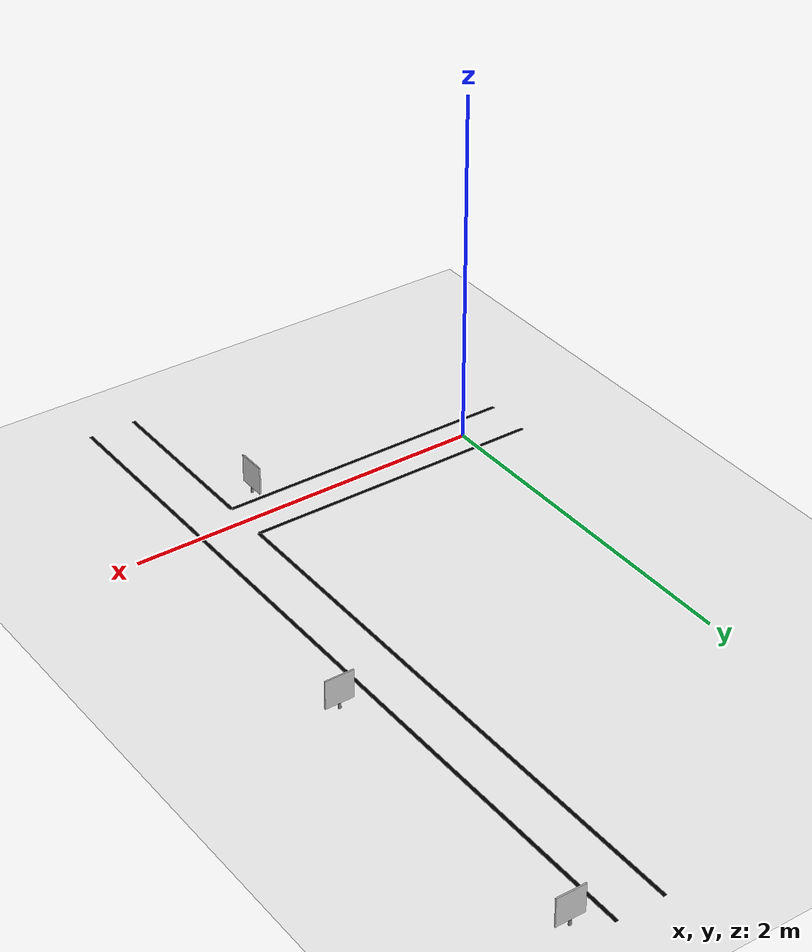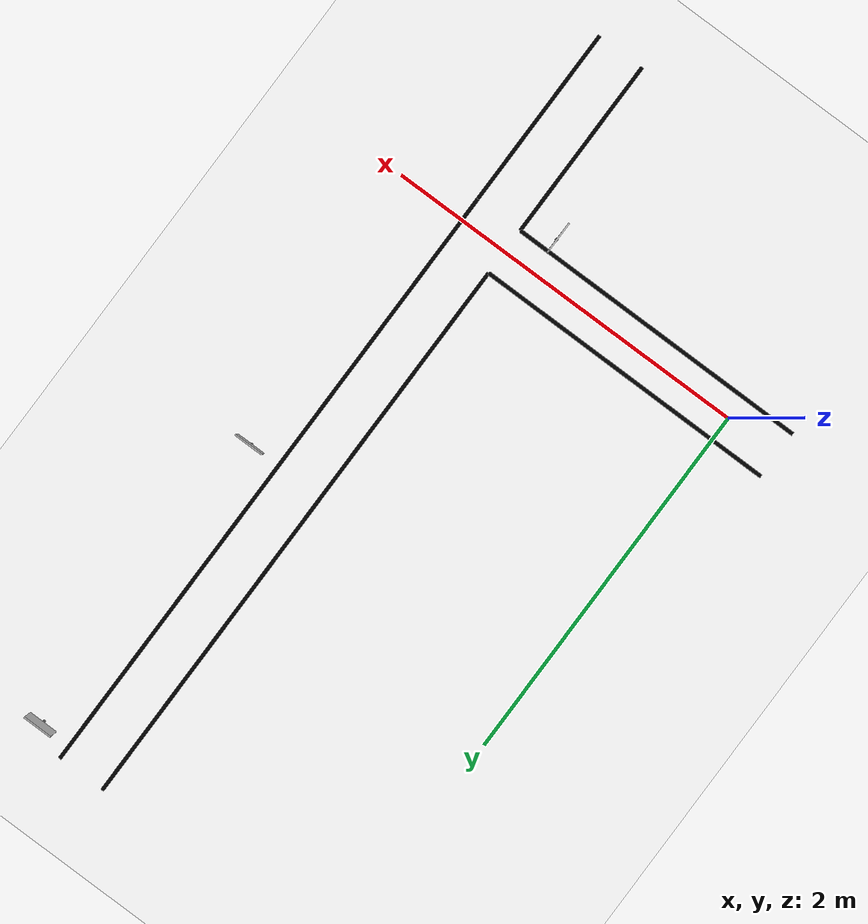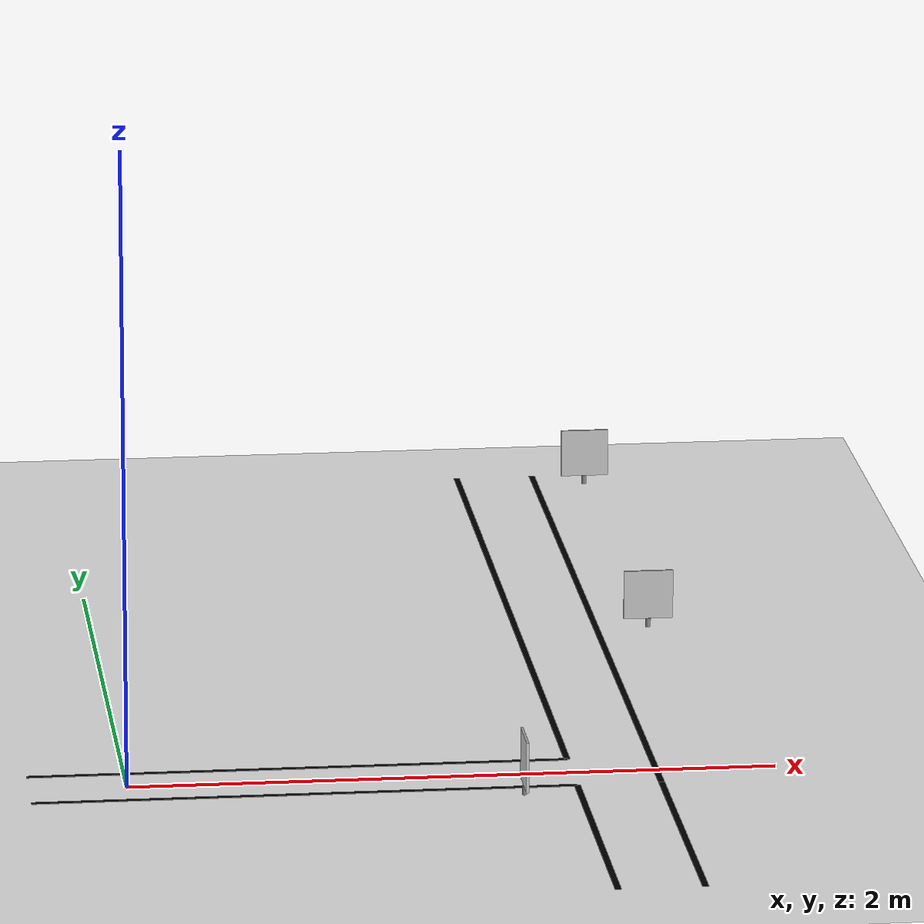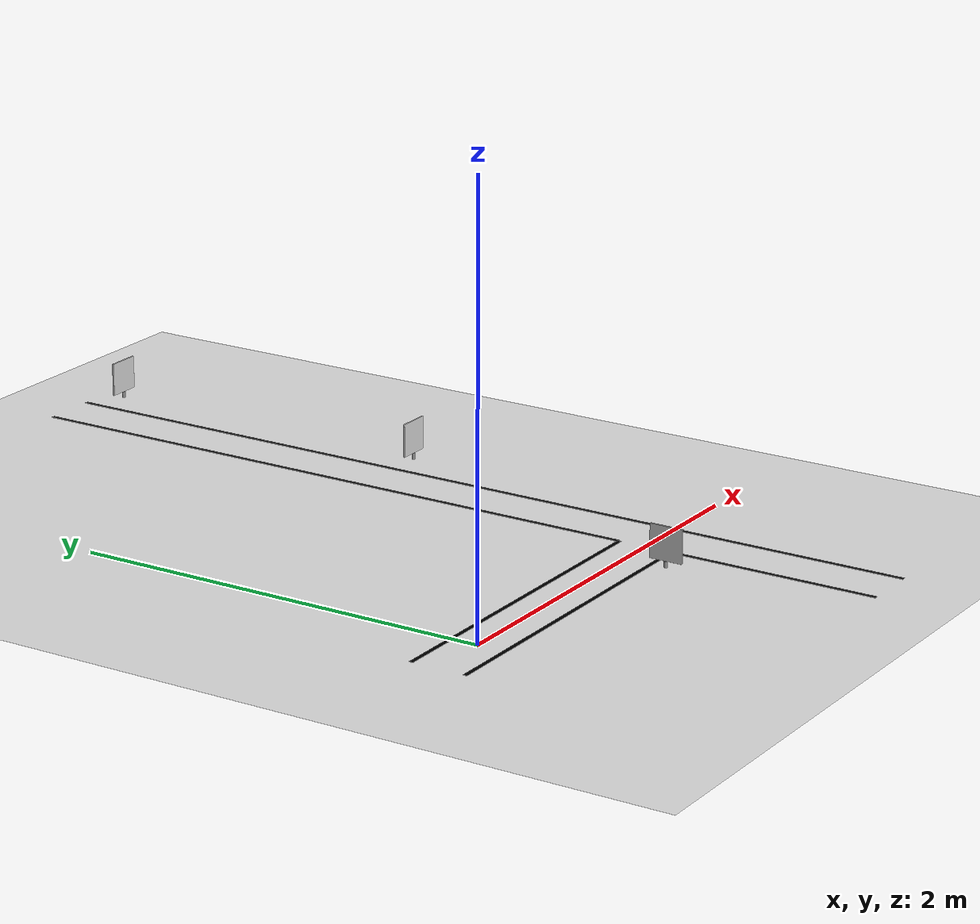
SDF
<?xml version="1.0"?>
<sdf version="1.6">
  <world name="datn_track_world">

    <include><uri>model://sun</uri></include>

    <scene>
      <ambient>0.8 0.8 0.8 1</ambient>
      <background>0.8 0.9 1 1</background>
      <shadows>false</shadows>
    </scene>

    <physics type="ode">
      <max_step_size>0.001</max_step_size>
      <real_time_factor>1</real_time_factor>
    </physics>

    <!-- ================= NEN DUONG MAU TRANG ================= -->
    <model name="ground_white">
      <static>true</static>
      <pose>1 1.1 0 0 0 0</pose>
      <link name="link">
        <visual name="visual">
          <geometry><plane><normal>0 0 1</normal><size>4 5.2</size></plane></geometry>
          <material>
            <ambient>1 1 1 1</ambient>
            <diffuse>1 1 1 1</diffuse>
            <specular>0.1 0.1 0.1 1</specular>
          </material>
        </visual>
        <collision name="collision">
          <geometry><plane><normal>0 0 1</normal><size>4 5.2</size></plane></geometry>
          <surface><friction><ode><mu>1.0</mu><mu2>1.0</mu2></ode></friction></surface>
        </collision>
      </link>
    </model>

    <!-- ================= DOAN VAO (THANG, TRUC X, dai 1.5m) =================
         Phuong an B: ca 2 vach cung dung tai x=1.37, doi xung -->
    <model name="tape_stem_outer">
      <static>true</static>
      <pose>0.535 -0.13 0.0015 0 0 0</pose>
      <link name="link"><visual name="visual">
        <geometry><box><size>1.67 0.02 0.001</size></box></geometry>
        <material><ambient>0 0 0 1</ambient><diffuse>0 0 0 1</diffuse><specular>0 0 0 1</specular></material>
      </visual></link>
    </model>
    <model name="tape_stem_inner">
      <static>true</static>
      <pose>0.535 0.13 0.0015 0 0 0</pose>
      <link name="link"><visual name="visual">
        <geometry><box><size>1.67 0.02 0.001</size></box></geometry>
        <material><ambient>0 0 0 1</ambient><diffuse>0 0 0 1</diffuse><specular>0 0 0 1</specular></material>
      </visual></link>
    </model>

    <!-- ================= NHANH TRAI (XE DI VAO, TRUC Y+, dai 3m) =================
         Dung dung khop tai diem goc, khong du ra ngoai -->
    <model name="tape_left_branch_outer">
      <static>true</static>
      <pose>1.63 1.585 0.0015 0 0 0</pose>
      <link name="link"><visual name="visual">
        <geometry><box><size>0.02 3.43 0.001</size></box></geometry>
        <material><ambient>0 0 0 1</ambient><diffuse>0 0 0 1</diffuse><specular>0 0 0 1</specular></material>
      </visual></link>
    </model>
    <model name="tape_left_branch_inner">
      <static>true</static>
      <pose>1.37 1.715 0.0015 0 0 0</pose>
      <link name="link"><visual name="visual">
        <geometry><box><size>0.02 3.17 0.001</size></box></geometry>
        <material><ambient>0 0 0 1</ambient><diffuse>0 0 0 1</diffuse><specular>0 0 0 1</specular></material>
      </visual></link>
    </model>

    <!-- ================= NHANH PHAI (NGO CUT, TRUC Y-, dai 1m, chi de tao hinh chu T) =================
         KHONG chom qua nhanh trai - dung dung tai ria giao lo, tach biet ro rang -->
    <model name="tape_right_branch_outer">
      <static>true</static>
      <pose>1.63 -0.63 0.0015 0 0 0</pose>
      <link name="link"><visual name="visual">
        <geometry><box><size>0.02 1.0 0.001</size></box></geometry>
        <material><ambient>0 0 0 1</ambient><diffuse>0 0 0 1</diffuse><specular>0 0 0 1</specular></material>
      </visual></link>
    </model>
    <model name="tape_right_branch_inner">
      <static>true</static>
      <pose>1.37 -0.63 0.0015 0 0 0</pose>
      <link name="link"><visual name="visual">
        <geometry><box><size>0.02 1.0 0.001</size></box></geometry>
        <material><ambient>0 0 0 1</ambient><diffuse>0 0 0 1</diffuse><specular>0 0 0 1</specular></material>
      </visual></link>
    </model>

    <!-- ================= BIEN BAO ================= -->

    <!-- 0.20 m right of the lane centre: at 0.30 m the sign is either cut by
         the camera frame or too small for the 320 px detector, and the turn
         is never armed. -->
    <model name="sign_re_trai">
      <static>true</static>
      <pose>1.2 -0.20 0 0 0 3.14159</pose>
      <link name="link">
        <visual name="pole"><pose>0 0 0.015 0 0 0</pose>
          <geometry><cylinder><radius>0.008</radius><length>0.03</length></cylinder></geometry>
          <material><ambient>0.5 0.5 0.5 1</ambient><diffuse>0.5 0.5 0.5 1</diffuse></material>
        </visual>
        <visual name="board"><pose>0 0 0.11 0 0 0</pose>
          <geometry><box><size>0.008 0.16 0.16</size></box></geometry>
          <cast_shadows>false</cast_shadows>
          <material><script>
            <uri>file://materials/scripts</uri>
            <uri>file://materials/textures</uri>
            <name>DATN/SignTurnLeft</name>
          </script></material>
        </visual>
      </link>
    </model>

    <model name="sign_toc_do_20">
      <static>true</static>
      <pose>1.80 1.5 0 0 0 -1.5708</pose>
      <link name="link">
        <visual name="pole"><pose>0 0 0.015 0 0 0</pose>
          <geometry><cylinder><radius>0.008</radius><length>0.03</length></cylinder></geometry>
          <material><ambient>0.5 0.5 0.5 1</ambient><diffuse>0.5 0.5 0.5 1</diffuse></material>
        </visual>
        <visual name="board"><pose>0 0 0.11 0 0 0</pose>
          <geometry><box><size>0.008 0.16 0.16</size></box></geometry>
          <cast_shadows>false</cast_shadows>
          <material><script>
            <uri>file://materials/scripts</uri>
            <uri>file://materials/textures</uri>
            <name>DATN/SignSpeedLimit20</name>
          </script></material>
        </visual>
      </link>
    </model>

    <model name="sign_dung_lai">
      <static>true</static>
      <pose>1.80 3.2 0 0 0 -1.5708</pose>
      <link name="link">
        <visual name="pole"><pose>0 0 0.015 0 0 0</pose>
          <geometry><cylinder><radius>0.008</radius><length>0.03</length></cylinder></geometry>
          <material><ambient>0.5 0.5 0.5 1</ambient><diffuse>0.5 0.5 0.5 1</diffuse></material>
        </visual>
        <visual name="board"><pose>0 0 0.11 0 0 0</pose>
          <geometry><box><size>0.008 0.16 0.16</size></box></geometry>
          <cast_shadows>false</cast_shadows>
          <material><script>
            <uri>file://materials/scripts</uri>
            <uri>file://materials/textures</uri>
            <name>DATN/SignStop</name>
          </script></material>
        </visual>
      </link>
    </model>

    <gui>
      <camera name="user_camera">
        <pose>0 -2 2 0 0.5 1.57</pose>
      </camera>
    </gui>

  </world>
</sdf>
